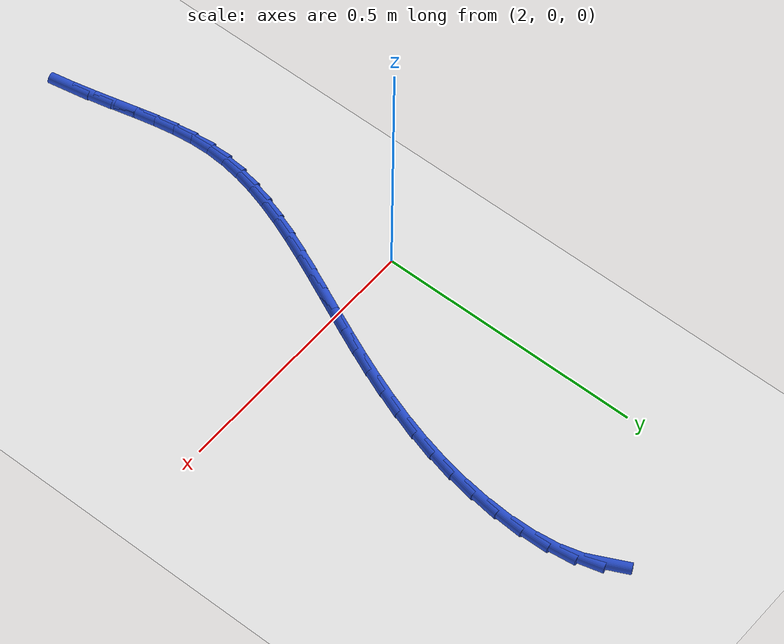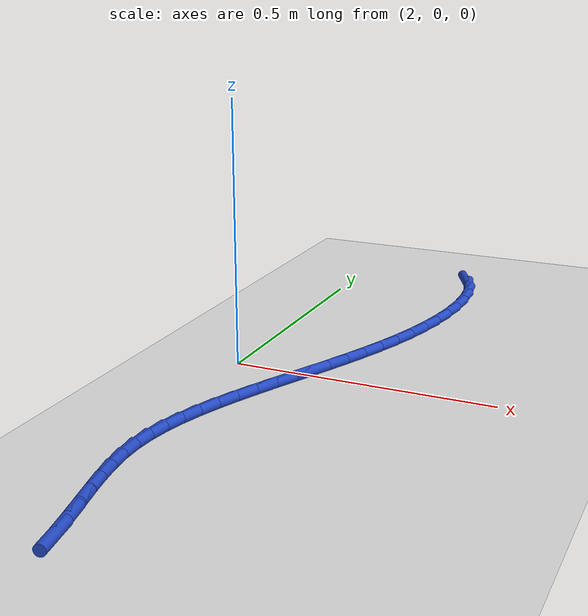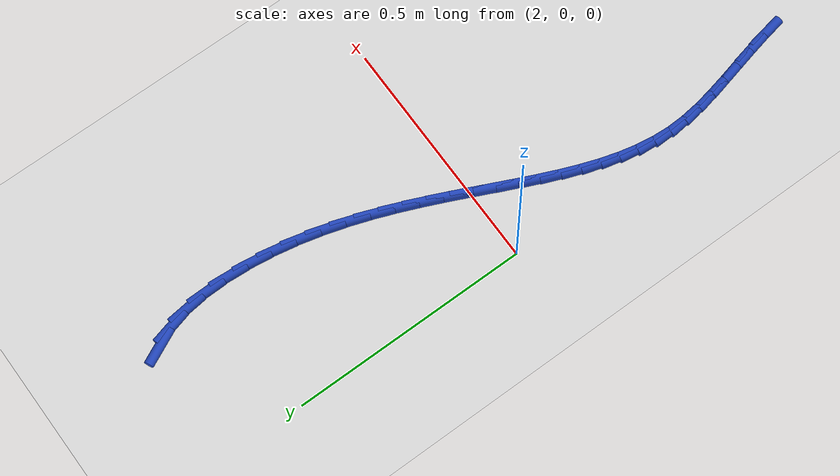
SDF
<sdf version="1.6">
 <world name="default">
  <model name="ground_plane">
   <static>1</static>
   <link name="link">
    <collision name="collision">
     <geometry><plane><normal>0 0 1</normal><size>100 100</size></plane></geometry>
     <surface><friction><ode><mu>100</mu><mu2>50</mu2></ode></friction></surface>
    </collision>
    <visual name="visual">
     <cast_shadows>0</cast_shadows>
     <geometry><plane><normal>0 0 1</normal><size>100 100</size></plane></geometry>
     <material>
      <script><uri>file://media/materials/scripts/gazebo.material</uri><name>Gazebo/WhiteGlow</name></script>
     </material>
    </visual>
   </link>
  </model>
  <model name="line">
   <link name="link_77">
    <pose>2.2493366889380897 0.6499486886510385 0.01 0 1.57 -1.1153345467063989</pose>
    <collision name="collision">
     <geometry><cylinder><radius>0.01</radius><length>0.08</length></cylinder></geometry>
    </collision>
    <visual name="visual">
     <material>
      <script><name>Gazebo/Blue</name><uri>file://media/materials/scripts/gazebo.material</uri></script>
     </material>
     <geometry><cylinder><radius>0.01</radius><length>0.08</length></cylinder></geometry>
    </visual>
   </link>
   <link name="link_78">
    <pose>2.2678938127334494 0.6120622546383957 0.01 0 1.57 -1.3111251603642844</pose>
    <collision name="collision">
     <geometry><cylinder><radius>0.01</radius><length>0.08</length></cylinder></geometry>
    </collision>
    <visual name="visual">
     <material>
      <script><name>Gazebo/Blue</name><uri>file://media/materials/scripts/gazebo.material</uri></script>
     </material>
     <geometry><cylinder><radius>0.01</radius><length>0.08</length></cylinder></geometry>
    </visual>
   </link>
   <link name="link_79">
    <pose>2.2796109109097786 0.56795820965882 0.01 0 1.57 -1.4526818258877523</pose>
    <collision name="collision">
     <geometry><cylinder><radius>0.01</radius><length>0.08</length></cylinder></geometry>
    </collision>
    <visual name="visual">
     <material>
      <script><name>Gazebo/Blue</name><uri>file://media/materials/scripts/gazebo.material</uri></script>
     </material>
     <geometry><cylinder><radius>0.01</radius><length>0.08</length></cylinder></geometry>
    </visual>
   </link>
   <link name="link_80">
    <pose>2.2853701711789403 0.5194251952147443 0.01 0 1.57 -1.557438406802395</pose>
    <collision name="collision">
     <geometry><cylinder><radius>0.01</radius><length>0.08</length></cylinder></geometry>
    </collision>
    <visual name="visual">
     <material>
      <script><name>Gazebo/Blue</name><uri>file://media/materials/scripts/gazebo.material</uri></script>
     </material>
     <geometry><cylinder><radius>0.01</radius><length>0.08</length></cylinder></geometry>
    </visual>
   </link>
   <link name="link_81">
    <pose>2.2860537812528 0.4682518528085998 0.01 0 1.57 1.5034337136800209</pose>
    <collision name="collision">
     <geometry><cylinder><radius>0.01</radius><length>0.08</length></cylinder></geometry>
    </collision>
    <visual name="visual">
     <material>
      <script><name>Gazebo/Blue</name><uri>file://media/materials/scripts/gazebo.material</uri></script>
     </material>
     <geometry><cylinder><radius>0.01</radius><length>0.08</length></cylinder></geometry>
    </visual>
   </link>
   <link name="link_82">
    <pose>2.282543928843222 0.4162268239428195 0.01 0 1.57 1.4377595317417657</pose>
    <collision name="collision">
     <geometry><cylinder><radius>0.01</radius><length>0.08</length></cylinder></geometry>
    </collision>
    <visual name="visual">
     <material>
      <script><name>Gazebo/Blue</name><uri>file://media/materials/scripts/gazebo.material</uri></script>
     </material>
     <geometry><cylinder><radius>0.01</radius><length>0.08</length></cylinder></geometry>
    </visual>
   </link>
   <link name="link_83">
    <pose>2.2756925640351526 0.36503123744502625 0.01 0 1.57 1.3793288288434626</pose>
    <collision name="collision">
     <geometry><cylinder><radius>0.01</radius><length>0.08</length></cylinder></geometry>
    </collision>
    <visual name="visual">
     <material>
      <script><name>Gazebo/Blue</name><uri>file://media/materials/scripts/gazebo.material</uri></script>
     </material>
     <geometry><cylinder><radius>0.01</radius><length>0.08</length></cylinder></geometry>
    </visual>
   </link>
   <link name="link_84">
    <pose>2.266041846073782 0.3152447322042906 0.01 0 1.57 1.326232472817037</pose>
    <collision name="collision">
     <geometry><cylinder><radius>0.01</radius><length>0.08</length></cylinder></geometry>
    </collision>
    <visual name="visual">
     <material>
      <script><name>Gazebo/Blue</name><uri>file://media/materials/scripts/gazebo.material</uri></script>
     </material>
     <geometry><cylinder><radius>0.01</radius><length>0.08</length></cylinder></geometry>
    </visual>
   </link>
   <link name="link_85">
    <pose>2.253952247353373 0.26680094273325855 0.01 0 1.57 1.2789968797895854</pose>
    <collision name="collision">
     <geometry><cylinder><radius>0.01</radius><length>0.08</length></cylinder></geometry>
    </collision>
    <visual name="visual">
     <material>
      <script><name>Gazebo/Blue</name><uri>file://media/materials/scripts/gazebo.material</uri></script>
     </material>
     <geometry><cylinder><radius>0.01</radius><length>0.08</length></cylinder></geometry>
    </visual>
   </link>
   <link name="link_86">
    <pose>2.239781933249073 0.21962530072505987 0.01 0 1.57 1.2380182687338057</pose>
    <collision name="collision">
     <geometry><cylinder><radius>0.01</radius><length>0.08</length></cylinder></geometry>
    </collision>
    <visual name="visual">
     <material>
      <script><name>Gazebo/Blue</name><uri>file://media/materials/scripts/gazebo.material</uri></script>
     </material>
     <geometry><cylinder><radius>0.01</radius><length>0.08</length></cylinder></geometry>
    </visual>
   </link>
   <link name="link_87">
    <pose>2.2238890691360256 0.17364323787282254 0.01 0 1.57 1.2035792167489279</pose>
    <collision name="collision">
     <geometry><cylinder><radius>0.01</radius><length>0.08</length></cylinder></geometry>
    </collision>
    <visual name="visual">
     <material>
      <script><name>Gazebo/Blue</name><uri>file://media/materials/scripts/gazebo.material</uri></script>
     </material>
     <geometry><cylinder><radius>0.01</radius><length>0.08</length></cylinder></geometry>
    </visual>
   </link>
   <link name="link_88">
    <pose>2.2066318203893784 0.12878018586967638 0.01 0 1.57 1.1758940999173617</pose>
    <collision name="collision">
     <geometry><cylinder><radius>0.01</radius><length>0.08</length></cylinder></geometry>
    </collision>
    <visual name="visual">
     <material>
      <script><name>Gazebo/Blue</name><uri>file://media/materials/scripts/gazebo.material</uri></script>
     </material>
     <geometry><cylinder><radius>0.01</radius><length>0.08</length></cylinder></geometry>
    </visual>
   </link>
   <link name="link_89">
    <pose>2.188368352384277 0.08496157640875045 0.01 0 1.57 1.1551544397866733</pose>
    <collision name="collision">
     <geometry><cylinder><radius>0.01</radius><length>0.08</length></cylinder></geometry>
    </collision>
    <visual name="visual">
     <material>
      <script><name>Gazebo/Blue</name><uri>file://media/materials/scripts/gazebo.material</uri></script>
     </material>
     <geometry><cylinder><radius>0.01</radius><length>0.08</length></cylinder></geometry>
    </visual>
   </link>
   <link name="link_90">
    <pose>2.1694568304958666 0.04211284118317425 0.01 0 1.57 1.1415708458749396</pose>
    <collision name="collision">
     <geometry><cylinder><radius>0.01</radius><length>0.08</length></cylinder></geometry>
    </collision>
    <visual name="visual">
     <material>
      <script><name>Gazebo/Blue</name><uri>file://media/materials/scripts/gazebo.material</uri></script>
     </material>
     <geometry><cylinder><radius>0.01</radius><length>0.08</length></cylinder></geometry>
    </visual>
   </link>
   <link name="link_91">
    <pose>2.150255420099293 0.0001594118860762904 0.01 0 1.57 1.135410092033227</pose>
    <collision name="collision">
     <geometry><cylinder><radius>0.01</radius><length>0.08</length></cylinder></geometry>
    </collision>
    <visual name="visual">
     <material>
      <script><name>Gazebo/Blue</name><uri>file://media/materials/scripts/gazebo.material</uri></script>
     </material>
     <geometry><cylinder><radius>0.01</radius><length>0.08</length></cylinder></geometry>
    </visual>
   </link>
   <link name="link_92">
    <pose>2.1311222865697044 -0.040973279789414056 0.01 0 1.57 1.137026712554685</pose>
    <collision name="collision">
     <geometry><cylinder><radius>0.01</radius><length>0.08</length></cylinder></geometry>
    </collision>
    <visual name="visual">
     <material>
      <script><name>Gazebo/Blue</name><uri>file://media/materials/scripts/gazebo.material</uri></script>
     </material>
     <geometry><cylinder><radius>0.01</radius><length>0.08</length></cylinder></geometry>
    </visual>
   </link>
   <link name="link_93">
    <pose>2.112415595282244 -0.08135980215016711 0.01 0 1.57 1.1468882108050487</pose>
    <collision name="collision">
     <geometry><cylinder><radius>0.01</radius><length>0.08</length></cylinder></geometry>
    </collision>
    <visual name="visual">
     <material>
      <script><name>Gazebo/Blue</name><uri>file://media/materials/scripts/gazebo.material</uri></script>
     </material>
     <geometry><cylinder><radius>0.01</radius><length>0.08</length></cylinder></geometry>
    </visual>
   </link>
   <link name="link_94">
    <pose>2.094493511612059 -0.1210747235030546 0.01 0 1.57 1.1655913994740517</pose>
    <collision name="collision">
     <geometry><cylinder><radius>0.01</radius><length>0.08</length></cylinder></geometry>
    </collision>
    <visual name="visual">
     <material>
      <script><name>Gazebo/Blue</name><uri>file://media/materials/scripts/gazebo.material</uri></script>
     </material>
     <geometry><cylinder><radius>0.01</radius><length>0.08</length></cylinder></geometry>
    </visual>
   </link>
   <link name="link_95">
    <pose>2.077714200934294 -0.1601926121549469 0.01 0 1.57 1.1938642786045672</pose>
    <collision name="collision">
     <geometry><cylinder><radius>0.01</radius><length>0.08</length></cylinder></geometry>
    </collision>
    <visual name="visual">
     <material>
      <script><name>Gazebo/Blue</name><uri>file://media/materials/scripts/gazebo.material</uri></script>
     </material>
     <geometry><cylinder><radius>0.01</radius><length>0.08</length></cylinder></geometry>
    </visual>
   </link>
   <link name="link_96">
    <pose>2.0624358286240967 -0.19878803641271492 0.01 0 1.57 1.232542914793553</pose>
    <collision name="collision">
     <geometry><cylinder><radius>0.01</radius><length>0.08</length></cylinder></geometry>
    </collision>
    <visual name="visual">
     <material>
      <script><name>Gazebo/Blue</name><uri>file://media/materials/scripts/gazebo.material</uri></script>
     </material>
     <geometry><cylinder><radius>0.01</radius><length>0.08</length></cylinder></geometry>
    </visual>
   </link>
   <link name="link_97">
    <pose>2.0490165600566117 -0.23693556458322954 0.01 0 1.57 1.2825061997444254</pose>
    <collision name="collision">
     <geometry><cylinder><radius>0.01</radius><length>0.08</length></cylinder></geometry>
    </collision>
    <visual name="visual">
     <material>
      <script><name>Gazebo/Blue</name><uri>file://media/materials/scripts/gazebo.material</uri></script>
     </material>
     <geometry><cylinder><radius>0.01</radius><length>0.08</length></cylinder></geometry>
    </visual>
   </link>
   <link name="link_98">
    <pose>2.037814560606986 -0.27470976497336075 0.01 0 1.57 1.3445451301890965</pose>
    <collision name="collision">
     <geometry><cylinder><radius>0.01</radius><length>0.08</length></cylinder></geometry>
    </collision>
    <visual name="visual">
     <material>
      <script><name>Gazebo/Blue</name><uri>file://media/materials/scripts/gazebo.material</uri></script>
     </material>
     <geometry><cylinder><radius>0.01</radius><length>0.08</length></cylinder></geometry>
    </visual>
   </link>
   <link name="link_99">
    <pose>2.0291879956503642 -0.312185205889981 0.01 0 1.57 1.4191435706115525</pose>
    <collision name="collision">
     <geometry><cylinder><radius>0.01</radius><length>0.08</length></cylinder></geometry>
    </collision>
    <visual name="visual">
     <material>
      <script><name>Gazebo/Blue</name><uri>file://media/materials/scripts/gazebo.material</uri></script>
     </material>
     <geometry><cylinder><radius>0.01</radius><length>0.08</length></cylinder></geometry>
    </visual>
   </link>
   <link name="link_100">
    <pose>2.0234950305618926 -0.3494364556399603 0.01 0 1.57 1.5061669324164055</pose>
    <collision name="collision">
     <geometry><cylinder><radius>0.01</radius><length>0.08</length></cylinder></geometry>
    </collision>
    <visual name="visual">
     <material>
      <script><name>Gazebo/Blue</name><uri>file://media/materials/scripts/gazebo.material</uri></script>
     </material>
     <geometry><cylinder><radius>0.01</radius><length>0.08</length></cylinder></geometry>
    </visual>
   </link>
   <link name="link_101">
    <pose>2.021093830716718 -0.38653808253016964 0.01 0 1.57 -1.539249492714244</pose>
    <collision name="collision">
     <geometry><cylinder><radius>0.01</radius><length>0.08</length></cylinder></geometry>
    </collision>
    <visual name="visual">
     <material>
      <script><name>Gazebo/Blue</name><uri>file://media/materials/scripts/gazebo.material</uri></script>
     </material>
     <geometry><cylinder><radius>0.01</radius><length>0.08</length></cylinder></geometry>
    </visual>
   </link>
   <link name="link_102">
    <pose>2.0222630541551188 -0.4235888857334068 0.01 0 1.57 -1.45433965887168</pose>
    <collision name="collision">
     <geometry><cylinder><radius>0.01</radius><length>0.08</length></cylinder></geometry>
    </collision>
    <visual name="visual">
     <material>
      <script><name>Gazebo/Blue</name><uri>file://media/materials/scripts/gazebo.material</uri></script>
     </material>
     <geometry><cylinder><radius>0.01</radius><length>0.08</length></cylinder></geometry>
    </visual>
   </link>
   <link name="link_103">
    <pose>2.026626441891777 -0.46088725866955893 0.01 0 1.57 -1.391949605663696</pose>
    <collision name="collision">
     <geometry><cylinder><radius>0.01</radius><length>0.08</length></cylinder></geometry>
    </collision>
    <visual name="visual">
     <material>
      <script><name>Gazebo/Blue</name><uri>file://media/materials/scripts/gazebo.material</uri></script>
     </material>
     <geometry><cylinder><radius>0.01</radius><length>0.08</length></cylinder></geometry>
    </visual>
   </link>
   <link name="link_104">
    <pose>2.0334856236140753 -0.49882976225964343 0.01 0 1.57 -1.3523405866803346</pose>
    <collision name="collision">
     <geometry><cylinder><radius>0.01</radius><length>0.08</length></cylinder></geometry>
    </collision>
    <visual name="visual">
     <material>
      <script><name>Gazebo/Blue</name><uri>file://media/materials/scripts/gazebo.material</uri></script>
     </material>
     <geometry><cylinder><radius>0.01</radius><length>0.08</length></cylinder></geometry>
    </visual>
   </link>
   <link name="link_105">
    <pose>2.0421399861477165 -0.5378136409651432 0.01 0 1.57 -1.3341398383129834</pose>
    <collision name="collision">
     <geometry><cylinder><radius>0.01</radius><length>0.08</length></cylinder></geometry>
    </collision>
    <visual name="visual">
     <material>
      <script><name>Gazebo/Blue</name><uri>file://media/materials/scripts/gazebo.material</uri></script>
     </material>
     <geometry><cylinder><radius>0.01</radius><length>0.08</length></cylinder></geometry>
    </visual>
   </link>
   <link name="link_106">
    <pose>2.0518889163183993 -0.5782361392475424 0.01 0 1.57 -1.335231708027263</pose>
    <collision name="collision">
     <geometry><cylinder><radius>0.01</radius><length>0.08</length></cylinder></geometry>
    </collision>
    <visual name="visual">
     <material>
      <script><name>Gazebo/Blue</name><uri>file://media/materials/scripts/gazebo.material</uri></script>
     </material>
     <geometry><cylinder><radius>0.01</radius><length>0.08</length></cylinder></geometry>
    </visual>
   </link>
   <link name="link_107">
    <pose>2.062031800951829 -0.6204945015683242 0.01 0 1.57 -1.353215009706409</pose>
    <collision name="collision">
     <geometry><cylinder><radius>0.01</radius><length>0.08</length></cylinder></geometry>
    </collision>
    <visual name="visual">
     <material>
      <script><name>Gazebo/Blue</name><uri>file://media/materials/scripts/gazebo.material</uri></script>
     </material>
     <geometry><cylinder><radius>0.01</radius><length>0.08</length></cylinder></geometry>
    </visual>
   </link>
   <link name="link_108">
    <pose>2.0718680268737044 -0.6649859723889714 0.01 0 1.57 -1.385579337907414</pose>
    <collision name="collision">
     <geometry><cylinder><radius>0.01</radius><length>0.08</length></cylinder></geometry>
    </collision>
    <visual name="visual">
     <material>
      <script><name>Gazebo/Blue</name><uri>file://media/materials/scripts/gazebo.material</uri></script>
     </material>
     <geometry><cylinder><radius>0.01</radius><length>0.08</length></cylinder></geometry>
    </visual>
   </link>
  </model>
 </world>
</sdf>
